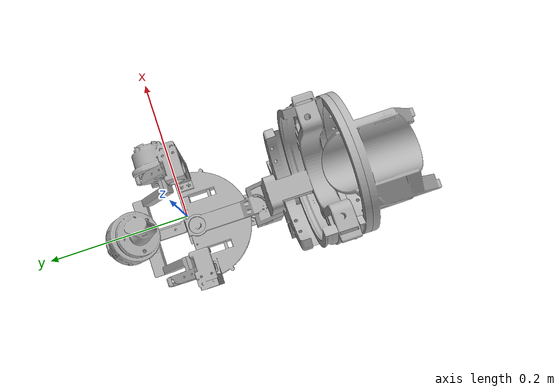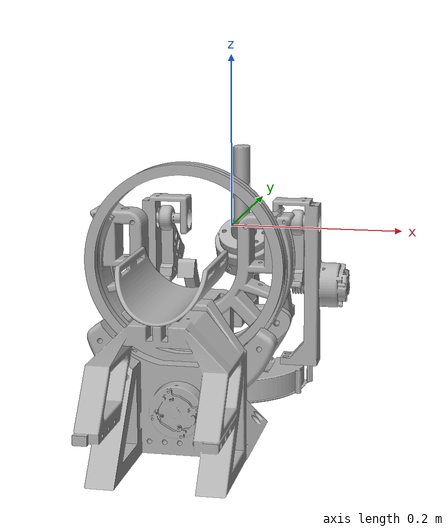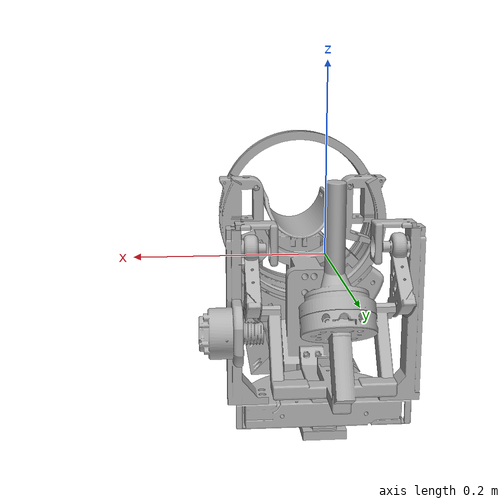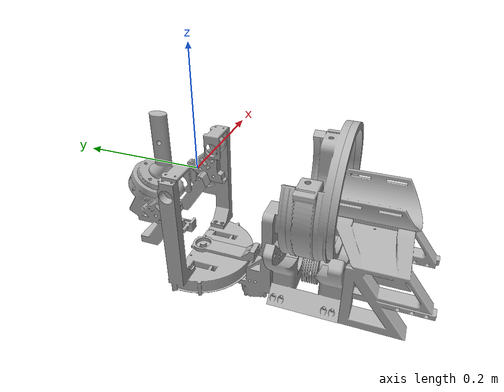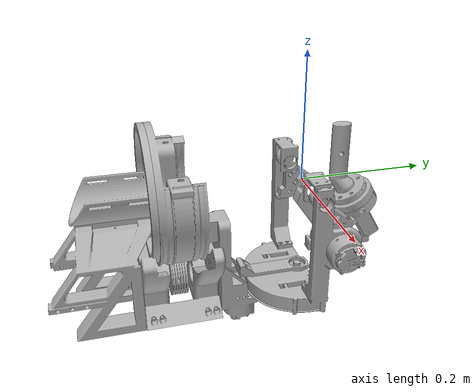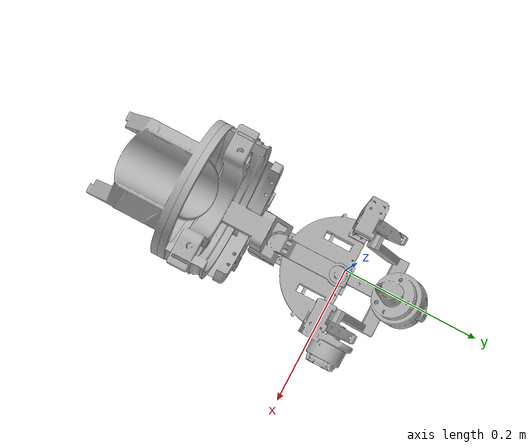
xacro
<?xml version="1.0" ?>
<robot name="complete_system_urdf" xmlns:xacro="http://www.ros.org/wiki/xacro">

<xacro:include filename="$(find complete_system_urdf_description)/urdf/materials.xacro" />
<xacro:include filename="$(find complete_system_urdf_description)/urdf/complete_system_urdf.ros2control.xml" />
<xacro:include filename="$(find complete_system_urdf_description)/urdf/complete_system_urdf.gazebo" />
<link name="base_link">
  <inertial>
    <origin xyz="-0.0004893152259659719 -0.2513490561575862 -0.11283715805734928" rpy="0 0 0"/>
    <mass value="1.6888096724896144"/>
    <inertia ixx="0.011059" iyy="0.008847" izz="0.009341" ixy="-5e-06" iyz="0.001084" ixz="-9e-06"/>
  </inertial>
  <visual>
    <origin xyz="0 0 0" rpy="0 0 0"/>
    <geometry>
      <mesh filename="file://$(find complete_system_urdf_description)/meshes/base_link.stl" scale="0.001 0.001 0.001"/>
    </geometry>
    <material name="silver"/>
  </visual>
  <collision>
    <origin xyz="0 0 0" rpy="0 0 0"/>
    <geometry>
      <mesh filename="file://$(find complete_system_urdf_description)/meshes/base_link.stl" scale="0.001 0.001 0.001"/>
    </geometry>
  </collision>
</link>

<link name="SP_1">
  <inertial>
    <origin xyz="-0.000157 0.127198 -0.096757" rpy="0 0 0"/>
    <mass value="0.7470"/>
    <inertia ixx="0.009477" ixy="+0.000007" ixz="+0.000004"
              iyy="0.008693" iyz="+0.003381" izz="0.004240"/>
  </inertial>
  <visual>
    <origin xyz="-0.0003 0.235996 -0.006391" rpy="0 0 0"/>
    <geometry>
      <mesh filename="file://$(find complete_system_urdf_description)/meshes/SP_1.stl" scale="0.001 0.001 0.001"/>
    </geometry>
    <material name="silver"/>
  </visual>
  <collision>
    <origin xyz="-0.0003 0.235996 -0.006391" rpy="0 0 0"/>
    <geometry>
      <mesh filename="file://$(find complete_system_urdf_description)/meshes/SP_1.stl" scale="0.001 0.001 0.001"/>
    </geometry>
  </collision>
</link>

<link name="FE_1">
  <inertial>
    <origin xyz="+0.015907 -0.014594 +0.066041" rpy="0 0 0"/>
    <mass value="0.5000"/>
    <inertia ixx="0.002095" ixy="-0.000326" ixz="-0.000239"
          iyy="0.003856" iyz="-0.000299" izz="0.002659"/>
  </inertial>
  <visual>
    <origin xyz="0.000339 0.001 0.190609" rpy="0 0 0"/>
    <geometry>
      <mesh filename="file://$(find complete_system_urdf_description)/meshes/FE_1.stl" scale="0.001 0.001 0.001"/>
    </geometry>
    <material name="silver"/>
  </visual>
  <collision>
    <origin xyz="0.000339 0.001 0.190609" rpy="0 0 0"/>
    <geometry>
      <mesh filename="file://$(find complete_system_urdf_description)/meshes/FE_1.stl" scale="0.001 0.001 0.001"/>
    </geometry>
  </collision>
</link>

<link name="RU_1">
  <inertial>
    <origin xyz="-0.085404 +0.069009 -0.080129" rpy="0 0 0"/>
    <mass value="0.5350"/>
    <inertia ixx="0.001653" ixy="+0.000097" ixz="-0.000087" iyy="0.001705" iyz="+0.000042" izz="0.001788"/>
  </inertial>
  <visual>
    <origin xyz="-0.085661 0.001 -0.006391" rpy="0 0 0"/>
    <geometry>
      <mesh filename="file://$(find complete_system_urdf_description)/meshes/RU_1.stl" scale="0.001 0.001 0.001"/>
    </geometry>
    <material name="silver"/>
  </visual>
  <collision>
    <origin xyz="-0.085661 0.001 -0.006391" rpy="0 0 0"/>
    <geometry>
      <mesh filename="file://$(find complete_system_urdf_description)/meshes/RU_1.stl" scale="0.001 0.001 0.001"/>
    </geometry>
  </collision>
</link>

<joint name="joint_1" type="revolute">
  <origin xyz="0.0003 -0.235996 0.006391" rpy="0 0 0"/>
  <parent link="base_link"/>
  <child link="SP_1"/>
  <axis xyz="0.0 -1.0 0.0"/>
  <limit upper="1.22173" lower="-1.22173" effort="100" velocity="100"/>
</joint>

<joint name="joint_2" type="revolute">
  <origin xyz="-0.000639 0.234996 -0.197" rpy="0 0 0"/>
  <parent link="SP_1"/>
  <child link="FE_1"/>
  <axis xyz="0.0 0.0 -1.0"/>
  <limit upper="1.047198" lower="-1.047198" effort="100" velocity="100"/>
</joint>

<joint name="joint_3" type="revolute">
  <origin xyz="0.086 0.0 0.197" rpy="0 0 0"/>
  <parent link="FE_1"/>
  <child link="RU_1"/>
  <axis xyz="1.0 0.0 0.0"/>
  <limit upper="0.523599" lower="-0.523599" effort="100" velocity="100"/>
</joint>
</robot>

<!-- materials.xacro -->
<robot name="complete_system_urdf" xmlns:xacro="http://www.ros.org/wiki/xacro" >

<material name="silver">
  <color rgba="0.700 0.700 0.700 1.000"/>
</material>

</robot>

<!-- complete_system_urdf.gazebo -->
<robot name="complete_system_urdf" xmlns:xacro="http://www.ros.org/wiki/xacro" >

<xacro:property name="body_color" value="Gazebo/Silver" />

<gazebo reference="base_link">
  <material>${body_color}</material>
  <mu1>0.2</mu1>
  <mu2>0.2</mu2>
  <self_collide>true</self_collide>
  <gravity>true</gravity>
</gazebo>

<gazebo reference="SP_1">
  <material>${body_color}</material>
  <mu1>0.2</mu1>
  <mu2>0.2</mu2>
  <self_collide>true</self_collide>
</gazebo>

<gazebo reference="FE_1">
  <material>${body_color}</material>
  <mu1>0.2</mu1>
  <mu2>0.2</mu2>
  <self_collide>true</self_collide>
</gazebo>

<gazebo reference="RU_1">
  <material>${body_color}</material>
  <mu1>0.2</mu1>
  <mu2>0.2</mu2>
  <self_collide>true</self_collide>
</gazebo>

</robot>
